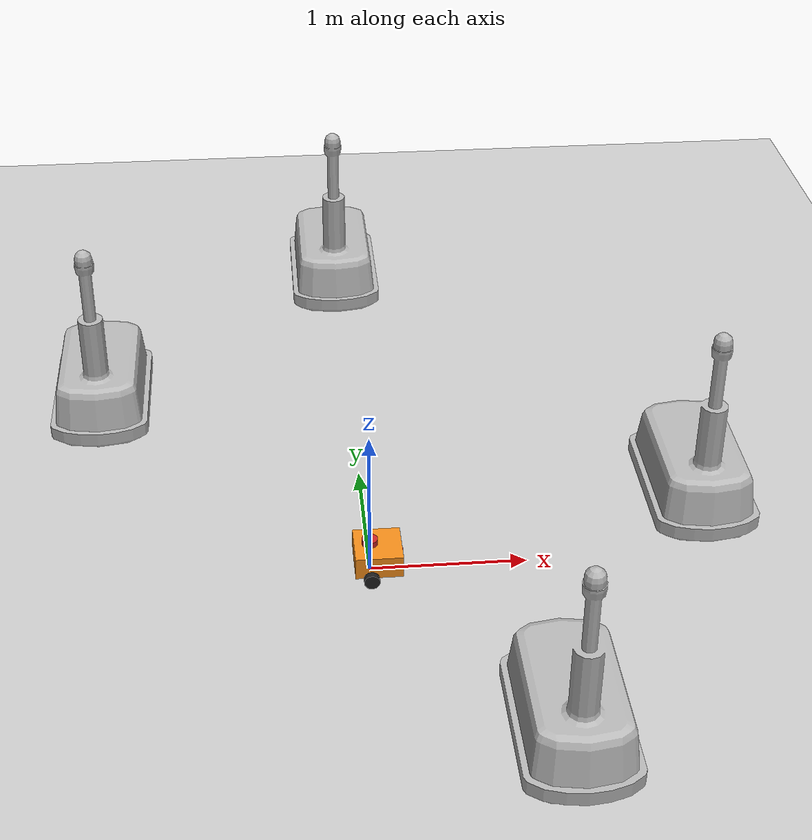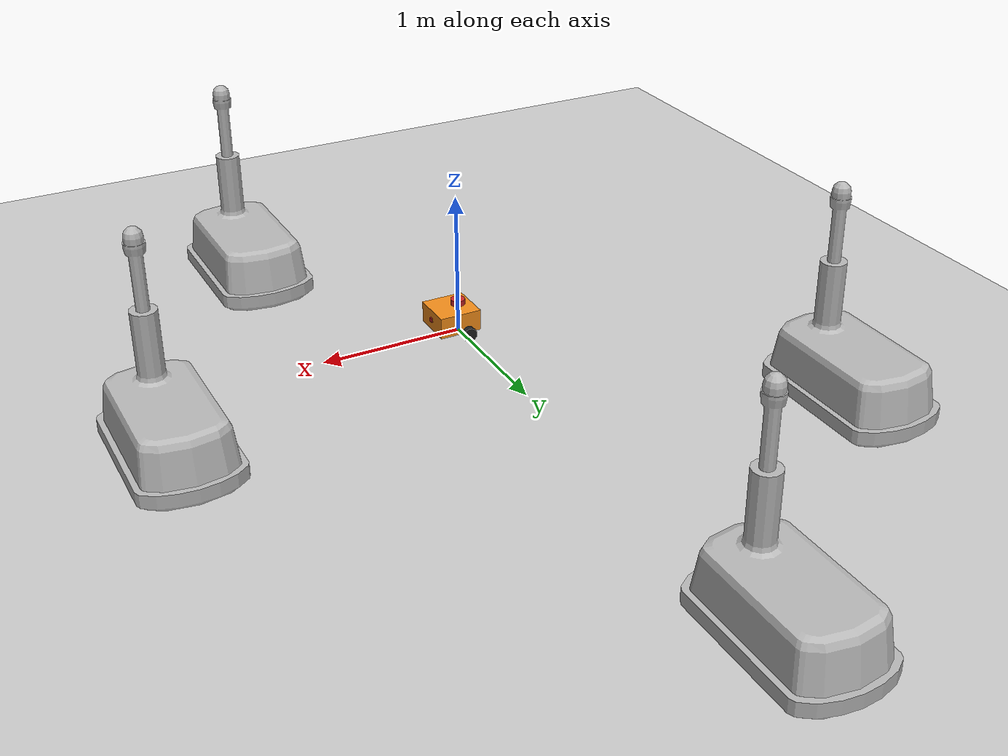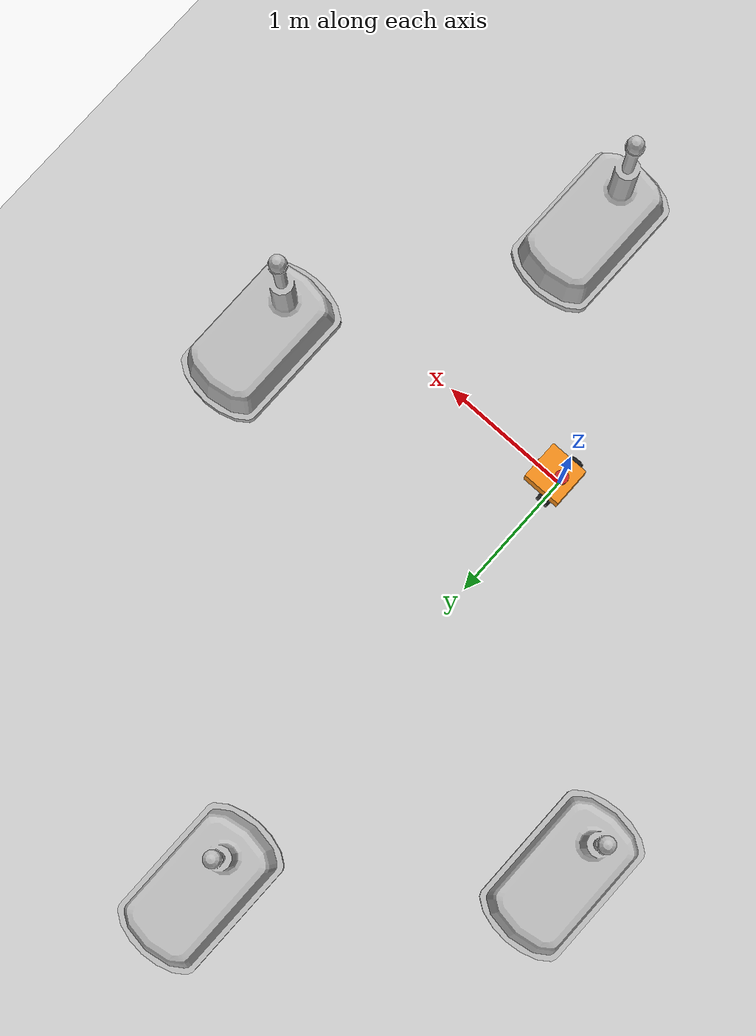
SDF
<sdf version="1.7">
 <world name="default">
  <light name="sun" type="directional">
   <pose>0 0 10 0 -0 0</pose>
   <diffuse>0.8 0.8 0.8 1</diffuse>
   <specular>0.2 0.2 0.2 1</specular>
   <attenuation>
    <range>1000</range>
    <constant>0.9</constant>
    <linear>0.01</linear>
    <quadratic>0.001</quadratic>
   </attenuation>
   <direction>-0.5 0.1 -0.9</direction>
   <spot><inner_angle>0</inner_angle><outer_angle>0</outer_angle><falloff>0</falloff></spot>
  </light>
  <model name="ground_plane">
   <static>1</static>
   <link name="link">
    <collision name="collision">
     <geometry><plane><normal>0 0 1</normal><size>100 100</size></plane></geometry>
     <surface><friction><ode><mu>100</mu><mu2>50</mu2></ode></friction></surface>
    </collision>
    <visual name="visual">
     <cast_shadows>0</cast_shadows>
     <geometry><plane><normal>0 0 1</normal><size>100 100</size></plane></geometry>
     <material>
      <script><uri>file://media/materials/scripts/gazebo.material</uri><name>Gazebo/Grey</name></script>
     </material>
    </visual>
   </link>
  </model>
  <gravity>0 0 -9.8</gravity>
  <magnetic_field>6e-06 2.3e-05 -4.2e-05</magnetic_field>
  <atmosphere type="adiabatic"/>
  <physics type="ode">
   <max_step_size>0.001</max_step_size>
   <real_time_factor>1</real_time_factor>
   <real_time_update_rate>1000</real_time_update_rate>
  </physics>
  <scene><ambient>0.4 0.4 0.4 1</ambient><background>0.7 0.7 0.7 1</background><shadows>1</shadows></scene>
  <audio><device>default</device></audio>
  <spherical_coordinates>
   <surface_model>EARTH_WGS84</surface_model>
   <latitude_deg>0</latitude_deg>
   <longitude_deg>0</longitude_deg>
   <elevation>0</elevation>
   <heading_deg>0</heading_deg>
  </spherical_coordinates>
  <model name="my_bot">
   <link name="base_link">
    <inertial>
     <pose>0.041667 0 0.091667 0 -0 0</pose>
     <mass>0.6</mass>
     <inertia>
      <ixx>0.00559667</ixx>
      <ixy>0</ixy>
      <ixz>0.000416667</ixz>
      <iyy>0.005805</iyy>
      <iyz>0</iyz>
      <izz>0.00783333</izz>
     </inertia>
    </inertial>
    <collision name="base_link_fixed_joint_lump__chassis_collision">
     <pose>0.05 0 0.075 0 -0 0</pose>
     <geometry><box><size>0.3 0.3 0.15</size></box></geometry>
    </collision>
    <collision name="base_link_fixed_joint_lump__laser_frame_collision_1">
     <pose>0 0 0.175 0 -0 0</pose>
     <geometry><cylinder><length>0.04</length><radius>0.05</radius></cylinder></geometry>
    </collision>
    <visual name="base_link_fixed_joint_lump__chassis_visual">
     <pose>0.05 0 0.075 0 -0 0</pose>
     <geometry><box><size>0.3 0.3 0.15</size></box></geometry>
     <material>
      <script><name>Gazebo/Orange</name><uri>file://media/materials/scripts/gazebo.material</uri></script>
     </material>
    </visual>
    <visual name="base_link_fixed_joint_lump__camera_link_visual_1">
     <pose>0.205 0 0.08 0 -0 0</pose>
     <geometry><box><size>0.01 0.03 0.03</size></box></geometry>
     <material>
      <script><name>Gazebo/Red</name><uri>file://media/materials/scripts/gazebo.material</uri></script>
     </material>
    </visual>
    <visual name="base_link_fixed_joint_lump__laser_frame_visual_2">
     <pose>0 0 0.175 0 -0 0</pose>
     <geometry><cylinder><length>0.04</length><radius>0.05</radius></cylinder></geometry>
     <material>
      <script><name>Gazebo/Red</name><uri>file://media/materials/scripts/gazebo.material</uri></script>
     </material>
    </visual>
    <sensor name="camera" type="camera">
     <visualize>1</visualize>
     <update_rate>10</update_rate>
     <camera>
      <horizontal_fov>1.089</horizontal_fov>
      <image><format>R8G8B8</format><width>640</width><height>480</height></image>
      <clip><near>0.05</near><far>8</far></clip>
     </camera>
     <plugin name="camera_controller" filename="libgazebo_ros_camera.so">
      <frame_name>camera_link_optical</frame_name>
     </plugin>
     <pose>0.205 0 0.08 0 -0 0</pose>
    </sensor>
    <sensor name="laser" type="ray">
     <visualize>0</visualize>
     <update_rate>10</update_rate>
     <ray>
      <scan>
       <horizontal>
        <samples>360</samples>
        <min_angle>-3.14</min_angle>
        <max_angle>3.14</max_angle>
        <resolution>1</resolution>
       </horizontal>
       <vertical><samples>1</samples><min_angle>0</min_angle><max_angle>0</max_angle></vertical>
      </scan>
      <range><min>0.3</min><max>12</max></range>
     </ray>
     <plugin name="laser_controller" filename="libgazebo_ros_ray_sensor.so">
      <ros><argument>~/out:=scan</argument></ros>
      <output_type>sensor_msgs/LaserScan</output_type>
      <frame_name>laser_frame</frame_name>
     </plugin>
     <pose>0 0 0.175 0 -0 0</pose>
    </sensor>
   </link>
   <joint name="caster_wheel_joint" type="revolute">
    <pose relative_to="base_link">0.14 0 0 0 -0 0</pose>
    <parent>base_link</parent>
    <child>caster_wheel</child>
    <axis>
     <xyz>1 0 0</xyz>
     <limit><lower>-1e+16</lower><upper>1e+16</upper></limit>
     <dynamics><spring_reference>0</spring_reference><spring_stiffness>0</spring_stiffness></dynamics>
    </axis>
   </joint>
   <link name="caster_wheel">
    <pose relative_to="caster_wheel_joint">0 0 0 0 -0 0</pose>
    <inertial>
     <mass>0.1</mass>
     <inertia><ixx>0.0001</ixx><ixy>0</ixy><ixz>0</ixz><iyy>0.0001</iyy><iyz>0</iyz><izz>0.0001</izz></inertia>
    </inertial>
    <collision name="caster_wheel_collision">
     <geometry><sphere><radius>0.05</radius></sphere></geometry>
     <surface><friction><ode><mu>0.001</mu><mu2>0.001</mu2></ode></friction></surface>
    </collision>
    <visual name="caster_wheel_visual">
     <geometry><sphere><radius>0.05</radius></sphere></geometry>
     <material>
      <script><name>Gazebo/Black</name><uri>file://media/materials/scripts/gazebo.material</uri></script>
     </material>
    </visual>
   </link>
   <joint name="left_wheel_joint" type="revolute">
    <pose relative_to="base_link">0 0.175 0 -1.5708 0 0</pose>
    <parent>base_link</parent>
    <child>left_wheel</child>
    <axis>
     <xyz>0 0 1</xyz>
     <limit><lower>-1e+16</lower><upper>1e+16</upper></limit>
     <dynamics><spring_reference>0</spring_reference><spring_stiffness>0</spring_stiffness></dynamics>
    </axis>
   </joint>
   <link name="left_wheel">
    <pose relative_to="left_wheel_joint">0 0 0 0 -0 0</pose>
    <inertial>
     <mass>0.1</mass>
     <inertia>
      <ixx>7.58333e-05</ixx>
      <ixy>0</ixy>
      <ixz>0</ixz>
      <iyy>7.58333e-05</iyy>
      <iyz>0</iyz>
      <izz>0.000125</izz>
     </inertia>
    </inertial>
    <collision name="left_wheel_collision">
     <geometry><cylinder><length>0.04</length><radius>0.05</radius></cylinder></geometry>
    </collision>
    <visual name="left_wheel_visual">
     <geometry><cylinder><length>0.04</length><radius>0.05</radius></cylinder></geometry>
     <material>
      <script><name>Gazebo/Black</name><uri>file://media/materials/scripts/gazebo.material</uri></script>
     </material>
    </visual>
   </link>
   <joint name="right_wheel_joint" type="revolute">
    <pose relative_to="base_link">0 -0.175 0 1.5708 -0 0</pose>
    <parent>base_link</parent>
    <child>right_wheel</child>
    <axis>
     <xyz>0 0 -1</xyz>
     <limit><lower>-1e+16</lower><upper>1e+16</upper></limit>
     <dynamics><spring_reference>0</spring_reference><spring_stiffness>0</spring_stiffness></dynamics>
    </axis>
   </joint>
   <link name="right_wheel">
    <pose relative_to="right_wheel_joint">0 0 0 0 -0 0</pose>
    <inertial>
     <mass>0.1</mass>
     <inertia>
      <ixx>7.58333e-05</ixx>
      <ixy>0</ixy>
      <ixz>0</ixz>
      <iyy>7.58333e-05</iyy>
      <iyz>0</iyz>
      <izz>0.000125</izz>
     </inertia>
    </inertial>
    <collision name="right_wheel_collision">
     <geometry><cylinder><length>0.04</length><radius>0.05</radius></cylinder></geometry>
    </collision>
    <visual name="right_wheel_visual">
     <geometry><cylinder><length>0.04</length><radius>0.05</radius></cylinder></geometry>
     <material>
      <script><name>Gazebo/Black</name><uri>file://media/materials/scripts/gazebo.material</uri></script>
     </material>
    </visual>
   </link>
   <static>0</static>
   <plugin name="gazebo_ros2_control" filename="libgazebo_ros2_control.so">
    <parameters>/home/bhupesh/dev_ws/install/my_bot/share/my_bot/config/my_controllers.yaml</parameters>
   </plugin>
   <pose>0.000635 -3e-05 0.05 0 1e-06 0.00279</pose>
  </model>
  <model name="warehouse_robot">
   <static>1</static>
   <link name="link">
    <visual name="visual">
     <geometry><mesh><uri>model://warehouse_robot/meshes/robot.dae</uri></mesh></geometry>
    </visual>
    <collision name="collision_base">
     <pose>0 0 0.20437 0 -0 0</pose>
     <geometry><box><size>0.55508 1.0228 0.40874</size></box></geometry>
    </collision>
    <collision name="collision_bumper">
     <pose>0 0 0.062205 0 -0 0</pose>
     <geometry><box><size>0.67266 1.17126 0.12441</size></box></geometry>
    </collision>
    <collision name="collision_column_large">
     <pose>0 -0.27539 0.43738 0 -0 0</pose>
     <geometry><cylinder><radius>0.08652</radius><length>0.87476</length></cylinder></geometry>
    </collision>
    <collision name="collision_column_small">
     <pose>0 -0.27539 0.70424 0 -0 0</pose>
     <geometry><cylinder><radius>0.04261</radius><length>1.40848</length></cylinder></geometry>
    </collision>
   </link>
   <pose>2.21566 0.643607 0 0 -0 0</pose>
  </model>
  <model name="warehouse_robot_0">
   <static>1</static>
   <link name="link">
    <visual name="visual">
     <geometry><mesh><uri>model://warehouse_robot/meshes/robot.dae</uri></mesh></geometry>
    </visual>
    <collision name="collision_base">
     <pose>0 0 0.20437 0 -0 0</pose>
     <geometry><box><size>0.55508 1.0228 0.40874</size></box></geometry>
    </collision>
    <collision name="collision_bumper">
     <pose>0 0 0.062205 0 -0 0</pose>
     <geometry><box><size>0.67266 1.17126 0.12441</size></box></geometry>
    </collision>
    <collision name="collision_column_large">
     <pose>0 -0.27539 0.43738 0 -0 0</pose>
     <geometry><cylinder><radius>0.08652</radius><length>0.87476</length></cylinder></geometry>
    </collision>
    <collision name="collision_column_small">
     <pose>0 -0.27539 0.70424 0 -0 0</pose>
     <geometry><cylinder><radius>0.04261</radius><length>1.40848</length></cylinder></geometry>
    </collision>
   </link>
   <pose>1.01343 -1.48672 0 0 -0 0</pose>
  </model>
  <model name="warehouse_robot_1">
   <static>1</static>
   <link name="link">
    <visual name="visual">
     <geometry><mesh><uri>model://warehouse_robot/meshes/robot.dae</uri></mesh></geometry>
    </visual>
    <collision name="collision_base">
     <pose>0 0 0.20437 0 -0 0</pose>
     <geometry><box><size>0.55508 1.0228 0.40874</size></box></geometry>
    </collision>
    <collision name="collision_bumper">
     <pose>0 0 0.062205 0 -0 0</pose>
     <geometry><box><size>0.67266 1.17126 0.12441</size></box></geometry>
    </collision>
    <collision name="collision_column_large">
     <pose>0 -0.27539 0.43738 0 -0 0</pose>
     <geometry><cylinder><radius>0.08652</radius><length>0.87476</length></cylinder></geometry>
    </collision>
    <collision name="collision_column_small">
     <pose>0 -0.27539 0.70424 0 -0 0</pose>
     <geometry><cylinder><radius>0.04261</radius><length>1.40848</length></cylinder></geometry>
    </collision>
   </link>
   <pose>-1.78415 2.02501 0 0 -0 0</pose>
  </model>
  <model name="warehouse_robot_2">
   <static>1</static>
   <link name="link">
    <visual name="visual">
     <geometry><mesh><uri>model://warehouse_robot/meshes/robot.dae</uri></mesh></geometry>
    </visual>
    <collision name="collision_base">
     <pose>0 0 0.20437 0 -0 0</pose>
     <geometry><box><size>0.55508 1.0228 0.40874</size></box></geometry>
    </collision>
    <collision name="collision_bumper">
     <pose>0 0 0.062205 0 -0 0</pose>
     <geometry><box><size>0.67266 1.17126 0.12441</size></box></geometry>
    </collision>
    <collision name="collision_column_large">
     <pose>0 -0.27539 0.43738 0 -0 0</pose>
     <geometry><cylinder><radius>0.08652</radius><length>0.87476</length></cylinder></geometry>
    </collision>
    <collision name="collision_column_small">
     <pose>0 -0.27539 0.70424 0 -0 0</pose>
     <geometry><cylinder><radius>0.04261</radius><length>1.40848</length></cylinder></geometry>
    </collision>
   </link>
   <pose>-0.022883 3.71072 0 0 -0 0</pose>
  </model>
 </world>
</sdf>
